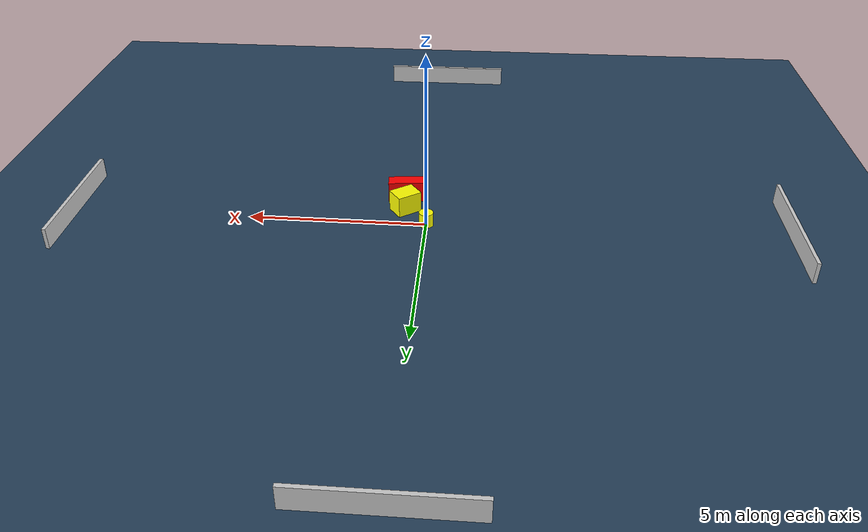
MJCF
<?xml version="1.0" ?>
<mujoco model="generated_environment">
  <option timestep="0.01" integrator="RK4" cone="elliptic"/>
  <default>
    <geom density="1"/>
  </default>
  <asset>
    <texture builtin="gradient" height="3072" name="skybox" rgb1="0.3 0.5 0.7" rgb2="0 0 0" type="skybox" width="512"/>
    <texture builtin="checker" height="300" name="groundplane" rgb1="0.2 0.3 0.4" rgb2="0.1 0.2 0.3" type="2d" width="300"/>
    <material name="groundplane" reflectance="0.2" texrepeat="5 5" texture="groundplane"/>
  </asset>
  <worldbody>
    <light dir="0 0 -1" directional="true" pos="0 0 1.5"/>
    <geom condim="3" friction="0.5 0.005 0.001" material="groundplane" name="floor" pos="0 0 0" size="0 0 0.05" type="plane"/>
    <body name="walls">
      <geom name="wall_1" condim="4" pos="-10.0 0.0 0.3" rgba="0.800000011920929 0.800000011920929 0.800000011920929 1.0" size="0.05 2.0 0.3" type="box"/>
      <geom name="wall_2" condim="4" pos="10.0 0.0 0.3" rgba="0.800000011920929 0.800000011920929 0.800000011920929 1.0" size="0.05 2.0 0.3" type="box"/>
      <geom name="wall_3" condim="4" pos="0.0 -10.0 0.3" rgba="0.800000011920929 0.800000011920929 0.800000011920929 1.0" size="2.0 0.05 0.3" type="box"/>
      <geom name="wall_4" condim="4" pos="0.0 10.0 0.3" rgba="0.800000011920929 0.800000011920929 0.800000011920929 1.0" size="2.0 0.05 0.3" type="box"/>
    </body>
    <body name="robot">
      <joint name="joint_x" type="slide" pos="0 0 0" axis="1 0 0"/>
      <joint name="joint_y" type="slide" pos="0 0 0" axis="0 1 0"/>
      <geom name="robot" type="cylinder" pos="0.0 0.0 0.2" size="0.2 0.2 0.0" mass="5.0" friction="1.0 0.005 0.0001" condim="4" rgba="1.0 1.0 0.0 1.0"/>
    </body>
    <body name="obstacle_1_movable">
      <geom name="obstacle_1_movable" condim="4" pos="0.6518425898356037 -0.7509742304346492 0.3" euler="0 0 35.82186474044147" friction="0.0 0.005 0.001" rgba="1.0 1.0 0.0 1.0" size="0.36131023364230536 0.27771251046510786 0.3" type="box" mass="0.1"/>
      <joint type="free"/>
    </body>
    <body name="obstacle_2_static">
      <geom name="obstacle_2_static" condim="4" pos="0.6337331621913838 -1.428762026893325 0.3" euler="0 0 5.8608600814512" friction="0.0 0.005 0.001" rgba="1.0 0.0 0.0 1.0" size="0.5678612432723911 0.20053739917750718 0.3" type="box"/>
    </body>
  </worldbody>
  <actuator>
    <motor name="actuator_x" joint="joint_x" gear="1" ctrlrange="-1 1"/>
    <motor name="actuator_y" joint="joint_y" gear="1" ctrlrange="-1 1"/>
  </actuator>
</mujoco>
